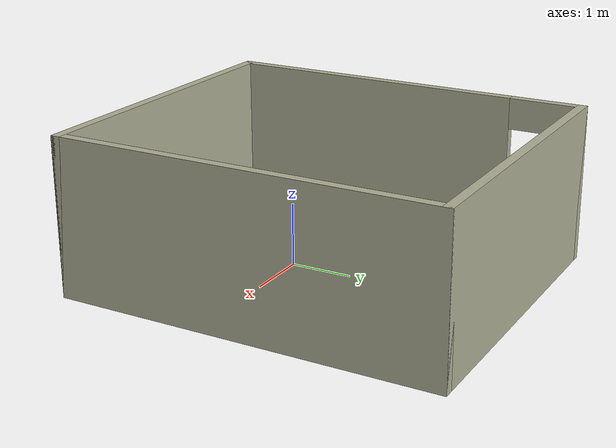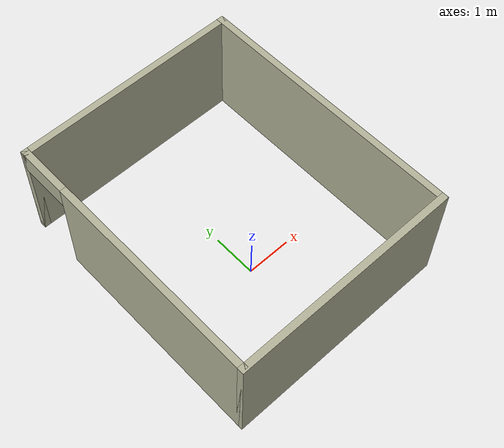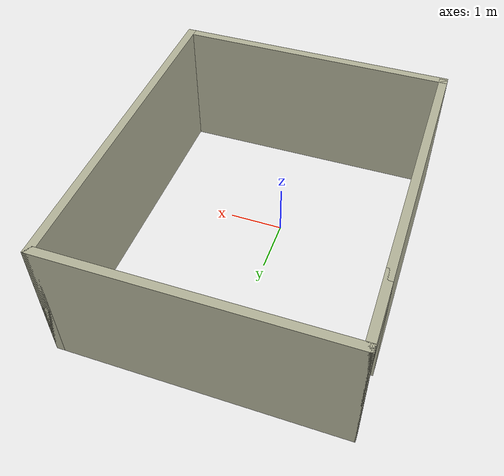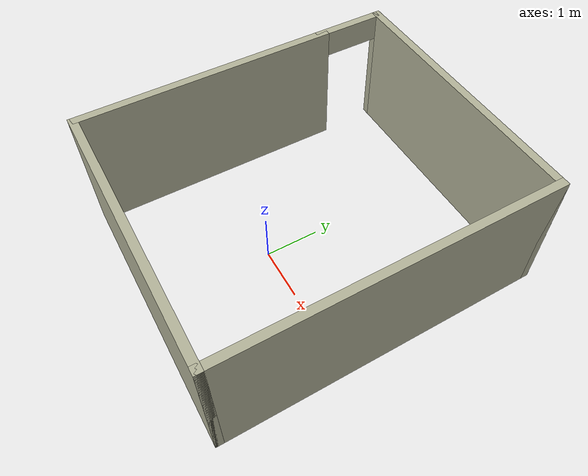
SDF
<?xml version='1.0'?>
<sdf version='1.6'>
  <model name='garage_external_wall'>
    <pose frame=''>-2.35226 0.74403 0 0 -0 0</pose>
    <link name='Wall_0'>
      <pose frame=''>0 0 0 0 -0 1.5708</pose>
      <visual name='Wall_0_Visual_0'>
        <pose frame=''>-0.585 0 1.25 0 -0 0</pose>
        <geometry>
          <box>
            <size>4.9 0.15 2.5</size>
          </box>
        </geometry>
        <material>
          <script>
            <uri>file://media/materials/scripts/gazebo.material</uri>
            <name>Gazebo/Residential</name>
          </script>
          <ambient>1 1 1 1</ambient>
        </material>
        <meta>
          <layer>0</layer>
        </meta>
      </visual>
      <collision name='Wall_0_Collision_0'>
        <geometry>
          <box>
            <size>4.9 0.15 2.5</size>
          </box>
        </geometry>
        <pose frame=''>-0.585 0 1.25 0 -0 0</pose>
      </collision>
      <visual name='Wall_0_Visual_1'>
        <pose frame=''>3 0 1.25 0 -0 0</pose>
        <geometry>
          <box>
            <size>0.15 0.15 2.5</size>
          </box>
        </geometry>
        <material>
          <script>
            <uri>file://media/materials/scripts/gazebo.material</uri>
            <name>Gazebo/Residential</name>
          </script>
          <ambient>1 1 1 1</ambient>
        </material>
        <meta>
          <layer>0</layer>
        </meta>
      </visual>
      <collision name='Wall_0_Collision_1'>
        <geometry>
          <box>
            <size>0.15 0.15 2.5</size>
          </box>
        </geometry>
        <pose frame=''>3 0 1.25 0 -0 0</pose>
      </collision>
      <visual name='Wall_0_Visual_2'>
        <pose frame=''>2.325 0 2.25 0 -0 0</pose>
        <geometry>
          <box>
            <size>1.35 0.15 0.5</size>
          </box>
        </geometry>
        <material>
          <script>
            <uri>file://media/materials/scripts/gazebo.material</uri>
            <name>Gazebo/Residential</name>
          </script>
          <ambient>1 1 1 1</ambient>
        </material>
        <meta>
          <layer>0</layer>
        </meta>
      </visual>
      <collision name='Wall_0_Collision_2'>
        <geometry>
          <box>
            <size>1.35 0.15 0.5</size>
          </box>
        </geometry>
        <pose frame=''>2.325 0 2.25 0 -0 0</pose>
      </collision>
    </link>
    <link name='Wall_1'>
      <pose frame=''>0 0 0 0 -0 1.5708</pose>
      <visual name='Wall_1_Visual'>
        <pose frame=''>0 -5 1.25 0 -0 0</pose>
        <geometry>
          <box>
            <size>6.15 0.15 2.5</size>
          </box>
        </geometry>
        <material>
          <script>
            <uri>file://media/materials/scripts/gazebo.material</uri>
            <name>Gazebo/Residential</name>
          </script>
          <ambient>1 1 1 1</ambient>
        </material>
        <meta>
          <layer>0</layer>
        </meta>
      </visual>
      <collision name='Wall_1_Collision'>
        <geometry>
          <box>
            <size>6.15 0.15 2.5</size>
          </box>
        </geometry>
        <pose frame=''>0 -5 1.25 0 -0 0</pose>
      </collision>
    </link>
    <link name='Wall_2'>
      <pose frame=''>0 0 0 0 -0 1.5708</pose>
      <visual name='Wall_2_Visual'>
        <pose frame=''>3 -2.5 1.25 0 -0 0</pose>
        <geometry>
          <box>
            <size>0.15 5.15 2.5</size>
          </box>
        </geometry>
        <material>
          <script>
            <uri>file://media/materials/scripts/gazebo.material</uri>
            <name>Gazebo/Residential</name>
          </script>
          <ambient>1 1 1 1</ambient>
        </material>
        <meta>
          <layer>0</layer>
        </meta>
      </visual>
      <collision name='Wall_2_Collision'>
        <geometry>
          <box>
            <size>0.15 5.15 2.5</size>
          </box>
        </geometry>
        <pose frame=''>3 -2.5 1.25 0 -0 0</pose>
      </collision>
    </link>
    <link name='Wall_3'>
      <pose frame=''>0 0 0 0 -0 1.5708</pose>
      <visual name='Wall_3_Visual'>
        <pose frame=''>-3 -2.5 1.25 0 -0 0</pose>
        <geometry>
          <box>
            <size>0.15 5.15 2.5</size>
          </box>
        </geometry>
        <material>
          <script>
            <uri>file://media/materials/scripts/gazebo.material</uri>
            <name>Gazebo/Residential</name>
          </script>
          <ambient>1 1 1 1</ambient>
        </material>
        <meta>
          <layer>0</layer>
        </meta>
      </visual>
      <collision name='Wall_3_Collision'>
        <geometry>
          <box>
            <size>0.15 5.15 2.5</size>
          </box>
        </geometry>
        <pose frame=''>-3 -2.5 1.25 0 -0 0</pose>
      </collision>
    </link>
    <static>1</static>
  </model>
</sdf>
